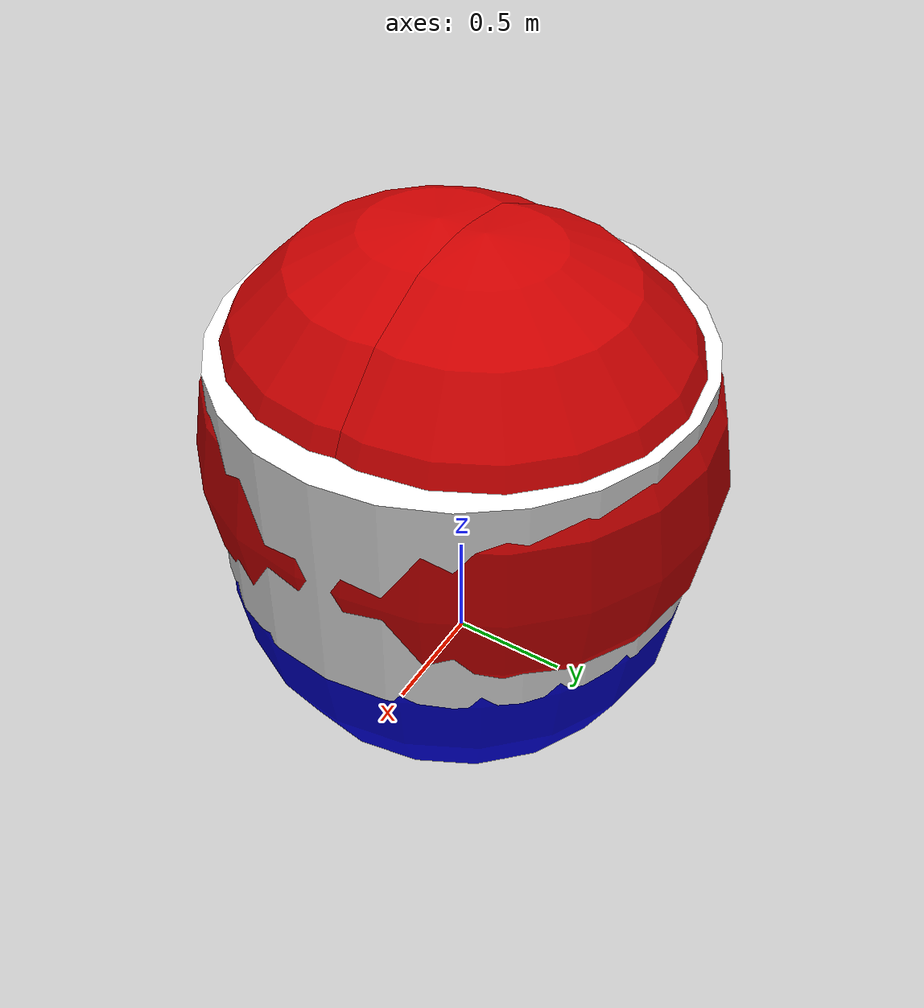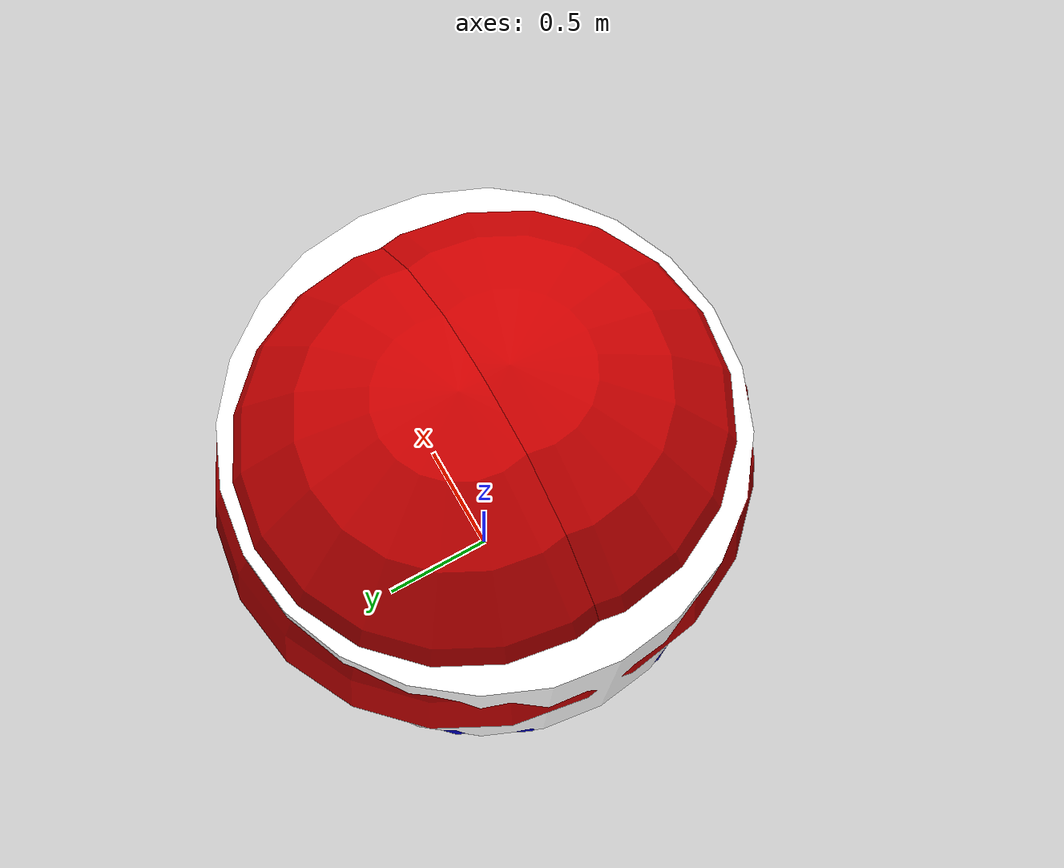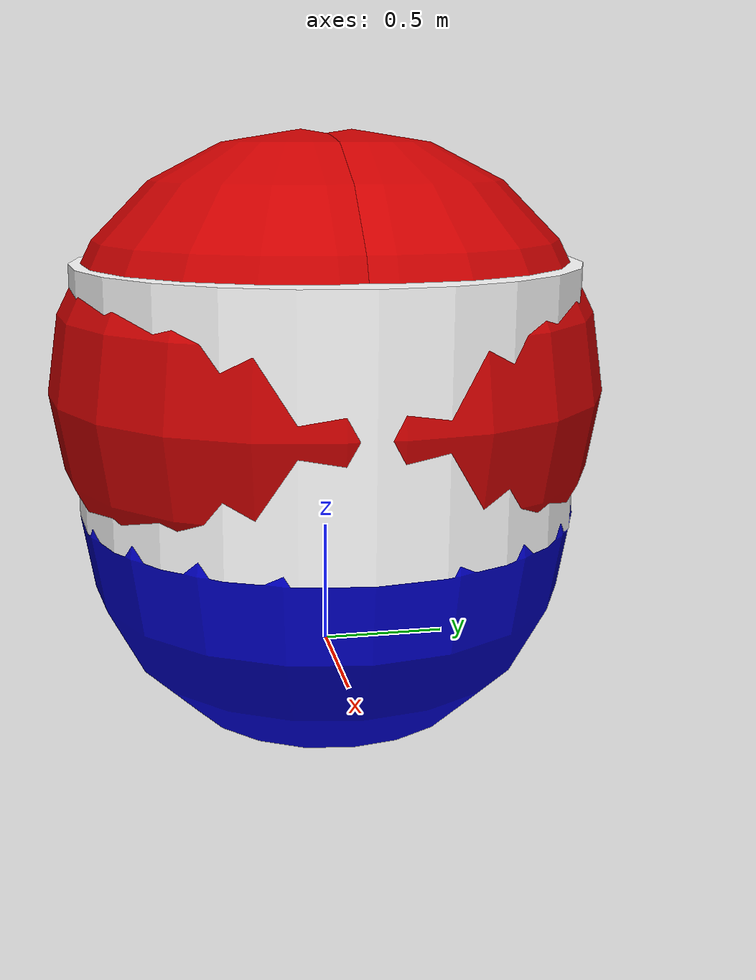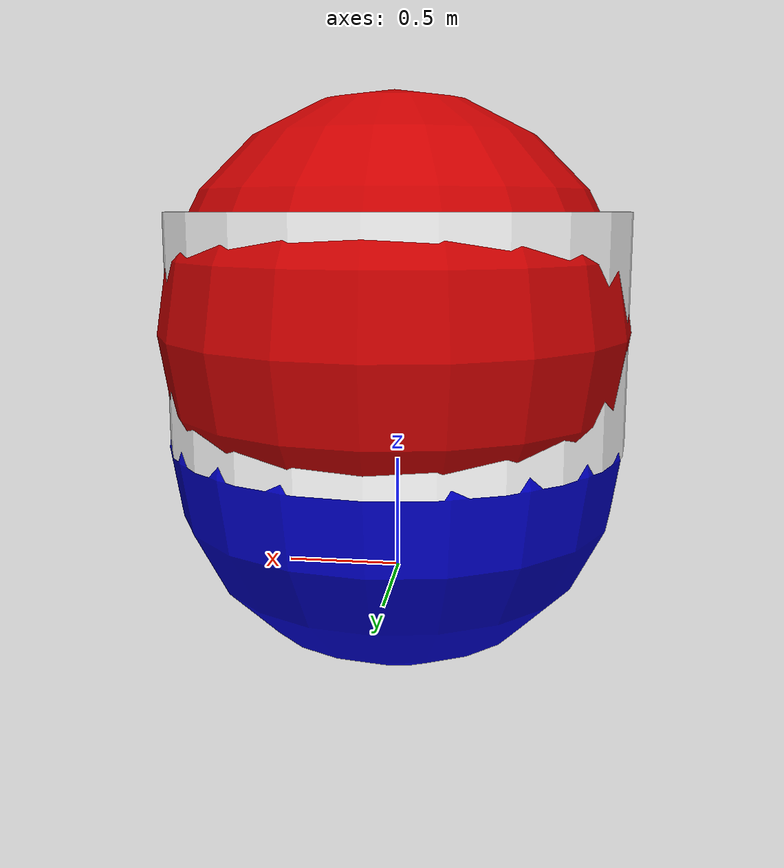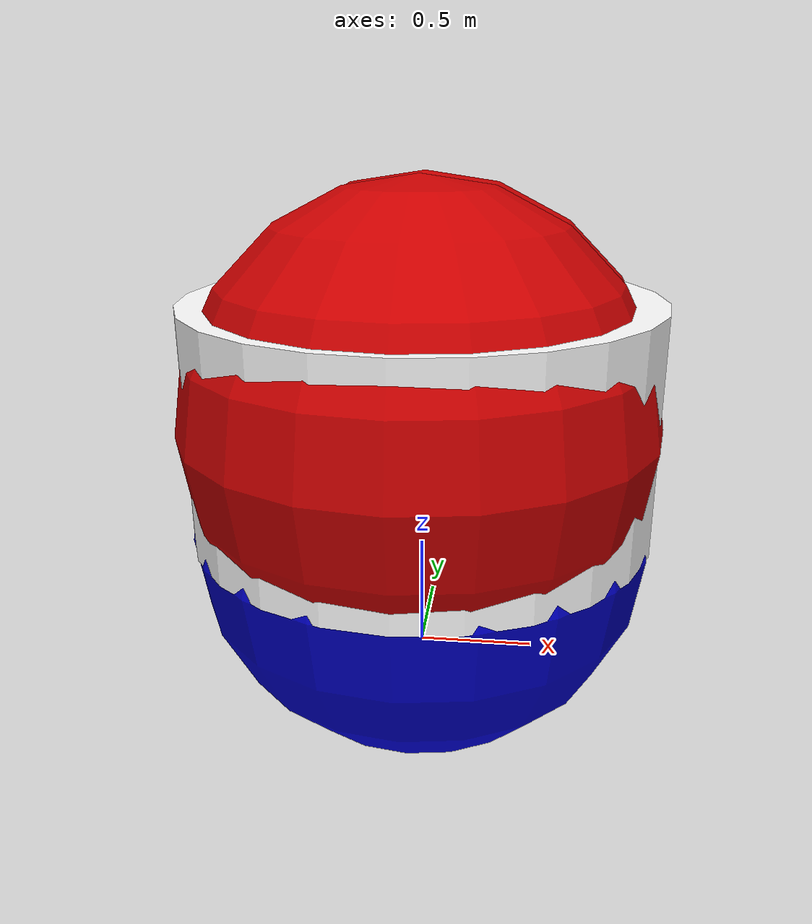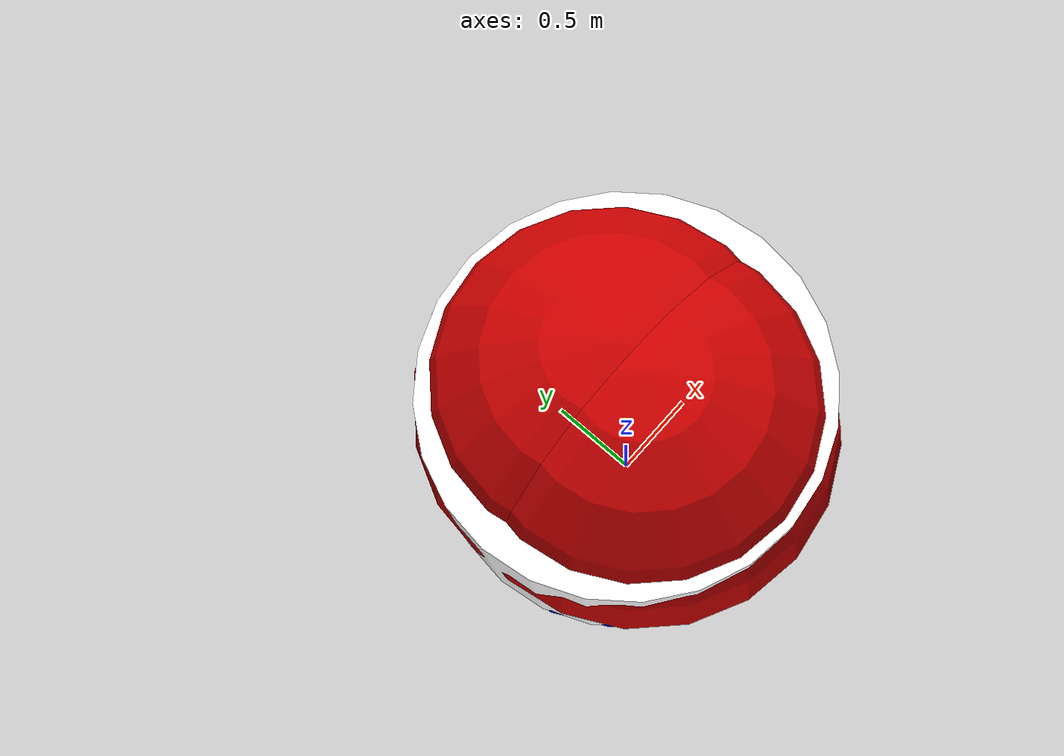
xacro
<?xml version="1.0"?>
<robot xmlns:xacro="http://www.ros.org/wiki/xacro" name="lab06_radeeb">

    <!-- Include the parameters xacro flie -->
    <xacro:include filename="$(find lab06_radeeb_description)/urdf/lab06_radeeb.parameters.xacro" />

    <!-- Include macros for creating all links and joints -->
    <xacro:include filename="$(find lab06_radeeb_description)/urdf/lab06_radeeb.macros.xacro" />

    <!-- Include macros for creating all links and joints -->
    <xacro:include filename="$(find lab06_radeeb_description)/urdf/lab06_radeeb.rvizmats.xacro" />

    <!-- Camera in separate file for readability -->
    <xacro:include filename="$(find lab06_radeeb_description)/urdf/lab06_radeeb.camera.xacro" />

    <!-- Include gazebo elements -->
    <xacro:include filename="$(find lab06_radeeb_description)/urdf/lab06_radeeb.gazebo.xacro" />

    <!-- Create a base link so that the robot can be away from the origin -->
    <link name="base_link" />

    <!-- Create the robot chassis -->
    <link name="robot_chassis">

        <!-- Create the chassis visual -->
        <visual>
            <xacro:create_cylinder_geometry radius="${chassis_radius}" length="${chassis_height}" />
            <material name="white" />
        </visual>

        <!-- The wheel's collision shape -->
        <collision>
            <xacro:create_cylinder_geometry radius="${chassis_radius}" length="${chassis_height}" />
        </collision>

        <!-- Create the chassis's inertial matrix -->
        <xacro:create_cylinder_inertial
            mass="${chassis_mass}" radius="${chassis_radius}"
            length="${chassis_height}"/>

    </link>

    <joint name="chassis_joint" type="fixed">
        <parent link="base_link" />
        <child link="robot_chassis" />
        <origin xyz="0 0 ${vertical_offset}" />
    </joint>

    <!-- Create the robot wheels -->
    <xacro:create_wheel reflect_lr="1" wheel_id="left" parent_name="robot_chassis" />
    <xacro:create_wheel reflect_lr="-1" wheel_id="right" parent_name="robot_chassis" />

    <!-- Create the robot gliders -->
    <xacro:create_glide reflect_fr="1" glide_id="front" parent_name="robot_chassis" />
    <xacro:create_glide reflect_fr="-1" glide_id="rear" parent_name="robot_chassis" />

</robot>

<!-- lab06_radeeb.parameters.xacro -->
<robot xmlns:xacro="http://www.ros.org/wiki/xacro" name="lab06_radeeb">

    <!--
         Command line arguments for the adabot
         (See display.launch for default values)
    -->
    <xacro:arg name="chassis_radius" default="1" />
    <xacro:arg name="chassis_height" default="1" />
    <xacro:arg name="wheel_radius"   default="1" />
    <xacro:arg name="glide_radius"   default="1" />

    <!--
         Properties for the robot bodies
    -->

    <!-- Robot vertical offset -->
    <xacro:property name="vertical_offset" value="${wheel_radius * 1.1}" />

    <!-- Chassis parameters -->
    <xacro:property name="chassis_density" value="500.0" />
    <xacro:property name="chassis_radius"  value="$(arg chassis_radius)" />
    <xacro:property name="chassis_height"  value="$(arg chassis_height)" />
    <xacro:property name="chassis_mass"
        value="${chassis_density * pi * chassis_radius**2 * chassis_height}" />

    <!-- Wheel parameters (wheel_length is only used for inertial properties)-->
    <xacro:property name="wheel_density" value="800.0" />
    <xacro:property name="wheel_radius"  value="$(arg wheel_radius)" />
    <xacro:property name="wheel_length"  value="${$(arg wheel_radius) * 0.5}" />
    <xacro:property name="wheel_mass"
        value="${wheel_density * pi * wheel_radius**2 * wheel_length}" />

    <!-- Glide parameters -->
    <xacro:property name="glide_density" value="200.0" />
    <xacro:property name="glide_radius"  value="$(arg glide_radius)" />
    <xacro:property name="glide_mass"
        value="${glide_density * 4.0 / 3.0 * pi * glide_radius**3}" />

</robot>

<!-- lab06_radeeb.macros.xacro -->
<robot xmlns:xacro="http://www.ros.org/wiki/xacro" name="lab06_radeeb">

    <!-- Create cylinder geometry -->
    <xacro:macro name="create_cylinder_geometry" params="radius length">
        <origin xyz="0 0 0" rpy="0 0 0" />
        <geometry>
            <cylinder radius="${radius}" length="${length}" />
        </geometry>
    </xacro:macro>

    <!-- Create sphere geometry -->
    <xacro:macro name="create_sphere_geometry" params="radius">
        <origin xyz="0 0 0" rpy="0 0 0" />
        <geometry>
            <sphere radius="${radius}" />
        </geometry>
    </xacro:macro>

    <!-- Macro for creating a cylinder inertial element -->
    <xacro:macro name="create_cylinder_inertial" params="mass radius length">
        <inertial>
            <mass value="${mass}" />
            <origin xyz="0 0 0" rpy="0 0 0" />
            <inertia
                ixx="${(1/12)*mass*(3*radius**2 + length**2)}"
                ixy="0"
                ixz="0"
                iyy="${(1/12)*mass*(3*radius**2 + length**2)}"
                iyz="0"
                izz="${(1/2)*mass*radius**2}"
                />
        </inertial>
    </xacro:macro>

    <!-- Macro for creating a sphere inertial element -->
    <xacro:macro name="create_sphere_inertial" params="mass radius">
        <inertial>
            <mass value="${mass}" />
            <inertia
                ixx="${(2/5) * mass * radius * radius}"
                ixy="0"
                ixz="0"
                iyy="${(2/5) * mass * radius * radius}"
                iyz="0"
                izz="${(2/5) * mass * radius * radius}"
                />
        </inertial>
    </xacro:macro>

    <xacro:macro name="create_wheel" params="reflect_lr wheel_id parent_name">

        <!-- The name of the current wheel -->
        <xacro:property name="wheel_name" value="${wheel_id}_wheel" />

        <!-- The wheel's rigid body -->
        <link name="${wheel_name}">

            <!-- Create the wheel visual -->
            <visual>
                <xacro:create_sphere_geometry radius="${wheel_radius}" />
                <material name="red" />
            </visual>

            <!-- The wheel's collision shape -->
            <collision>
                <xacro:create_sphere_geometry radius="${wheel_radius}" />
            </collision>

            <!-- Create the wheel's inertial matrix -->
            <xacro:create_cylinder_inertial
                mass="${wheel_mass}" radius="${wheel_radius}"
                length="${wheel_length}"/>

        </link>

        <!-- Connect the wheel to its parent -->
        <joint name="${wheel_name}_joint" type="continuous">
            <parent link="${parent_name}" />
            <child link="${wheel_name}" />
            <origin xyz="0 ${(chassis_radius - wheel_radius * 1.1) * reflect_lr} 0" rpy="0 0 0" />
            <axis xyz="0 1 0" />
        </joint>

    </xacro:macro>

    <xacro:macro name="create_glide" params="reflect_fr glide_id parent_name">

        <!-- The name of the current glide -->
        <xacro:property name="glide_name" value="${glide_id}_glide" />

        <!-- The glide's rigid body -->
        <link name="${glide_name}">

            <!-- Create the glide visual -->
            <visual>
                <xacro:create_sphere_geometry radius="${glide_radius}" />
                <material name="blue" />
            </visual>

            <!-- The glide's collision shape -->
            <collision>
                <xacro:create_sphere_geometry radius="${glide_radius}" />
            </collision>

            <!-- Create the glide's inertial matrix -->
            <xacro:create_sphere_inertial
                mass="${glide_mass}" radius="${glide_radius}" />

        </link>

        <!-- Connect the glide to its parent -->
        <joint name="${glide_name}_joint" type="fixed">
            <parent link="${parent_name}" />
            <child link="${glide_name}" />
            <origin
                xyz="${(chassis_radius - glide_radius) * reflect_fr} 0 ${-chassis_height/2}"
                rpy="0 0 0" />
        </joint>

    </xacro:macro>
</robot>

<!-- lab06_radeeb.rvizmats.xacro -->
<robot xmlns:xacro="http://www.ros.org/wiki/xacro" name="lab06_radeeb">

    <material name="black">
        <color rgba="0.0 0.0 0.0 1.0" />
    </material>

    <material name="blue">
        <color rgba="0.0 0.0 0.8 1.0" />
    </material>

    <material name="green">
        <color rgba="0.0 0.8 0.0 1.0" />
    </material>

    <material name="grey">
        <color rgba="0.2 0.2 0.2 1.0" />
    </material>

    <material name="orange">
        <color rgba="${255/255} ${108/255} ${10/255} 1.0" />
    </material>

    <material name="brown">
        <color rgba="${222/255} ${207/255} ${195/255} 1.0" />
    </material>

    <material name="red">
        <color rgba="0.8 0.0 0.0 1.0" />
    </material>

    <material name="white">
        <color rgba="1.0 1.0 1.0 1.0" />
    </material>

</robot>

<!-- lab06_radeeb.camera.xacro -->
<robot xmlns:xacro="http://www.ros.org/wiki/xacro" name="lab06_radeeb">

    <xacro:property name="camera_size" value="0.05" />

    <link name="camera">

        <collision>
            <origin xyz="0 0 0" rpy="0 0 0" />
            <geometry>
                <box size="${camera_size} ${camera_size} ${camera_size}" />
            </geometry>
        </collision>

        <visual>
            <origin xyz="0 0 0" rpy="0 0 0" />
            <geometry>
                <box size="${camera_size} ${camera_size} ${camera_size}" />
            </geometry>
            <material name="black" />
        </visual>

        <inertial>
            <mass value="1e-5" />
            <origin xyz="0 0 0" rpy="0 0 0" />
            <inertia ixx="1e-6" ixy="0" ixz="0" iyy="1e-6" iyz="0" izz="1e-6" />
        </inertial>

    </link>

    <joint name="camera_joint" type="fixed">
        <origin xyz="0 0 ${camera_size/2 + chassis_height/2}" rpy="0 0 0" />
        <parent link="robot_chassis" />
        <child link="camera" />
    </joint>

</robot>
